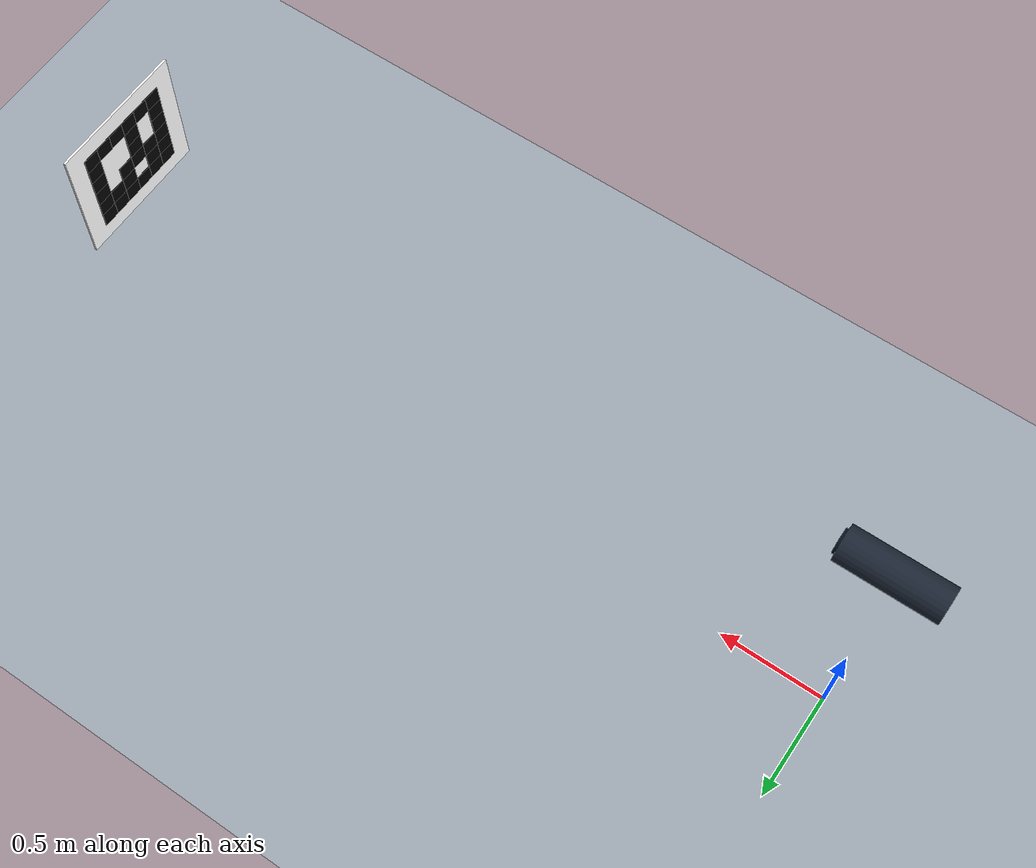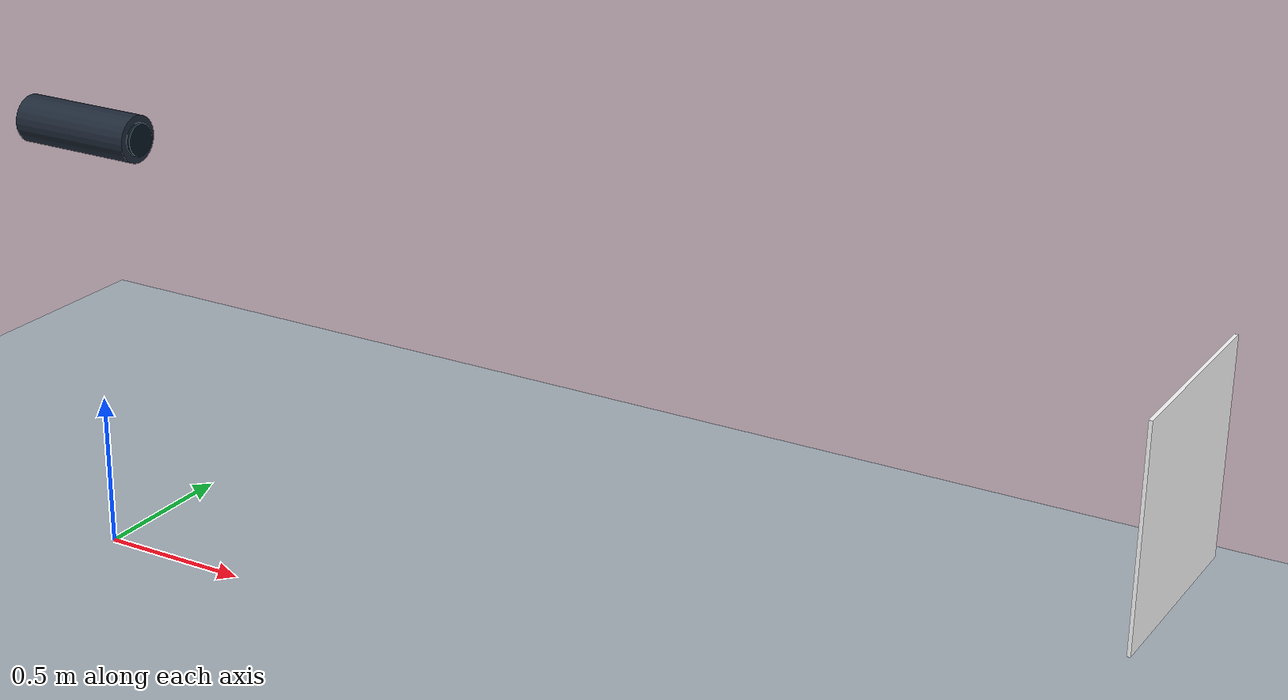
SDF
<?xml version="1.0"?>
<sdf version="1.10">
  <world name="camera_dancer_world">
    <physics name="physics" type="ignored">
      <max_step_size>0.001</max_step_size>
      <real_time_factor>1.0</real_time_factor>
    </physics>
    <gravity>0 0 -9.81</gravity>
    <plugin filename="gz-sim-physics-system" name="gz::sim::systems::Physics"/>
    <plugin filename="gz-sim-sensors-system" name="gz::sim::systems::Sensors">
      <render_engine>ogre2</render_engine>
    </plugin>
    <plugin filename="gz-sim-user-commands-system" name="gz::sim::systems::UserCommands"/>
    <plugin filename="gz-sim-scene-broadcaster-system" name="gz::sim::systems::SceneBroadcaster"/>

    <scene>
      <ambient>0.6 0.6 0.6 1</ambient>
      <background>0.78 0.85 0.93 1</background>
      <shadows>true</shadows>
    </scene>
    <gui fullscreen="false">
      <plugin filename="MinimalScene" name="3D View">
        <gz-gui>
          <title>3D View</title>
          <property type="bool" key="showTitleBar">false</property>
          <property type="string" key="state">docked</property>
        </gz-gui>
        <engine>ogre2</engine>
        <scene>scene</scene>
        <ambient_light>0.6 0.6 0.6</ambient_light>
        <background_color>0.78 0.85 0.93</background_color>
        <camera_pose>-5 -5 4 0 0.46 0.7854</camera_pose>
      </plugin>
      <plugin filename="SelectEntities" name="Выбор объектов">
        <gz-gui>
          <property type="string" key="state">floating</property>
          <property type="bool" key="showTitleBar">false</property>
          <property type="double" key="width">5</property>
          <property type="double" key="height">5</property>
        </gz-gui>
      </plugin>
      <plugin filename="GzSceneManager" name="Scene Manager">
        <gz-gui>
          <property type="string" key="state">floating</property>
          <property type="bool" key="showTitleBar">false</property>
          <property type="double" key="width">5</property>
          <property type="double" key="height">5</property>
        </gz-gui>
      </plugin>
      <plugin filename="InteractiveViewControl" name="View Control">
        <gz-gui>
          <property type="string" key="state">floating</property>
          <property type="bool" key="showTitleBar">false</property>
          <property type="double" key="width">5</property>
          <property type="double" key="height">5</property>
        </gz-gui>
      </plugin>
      <plugin filename="LiveTransformControl" name="Перемещение объекта">
        <gz-gui>
          <title>Переместить / повернуть объект</title>
          <anchors target="3D View">
            <line own="left" target="left"/>
            <line own="top" target="top"/>
          </anchors>
          <property type="string" key="state">floating</property>
          <property type="bool" key="showTitleBar">false</property>
          <property type="double" key="width">230</property>
          <property type="double" key="height">50</property>
        </gz-gui>
      </plugin>
      <plugin filename="WorldControl" name="World Control">
        <gz-gui>
          <title>World Control</title>
          <property type="bool" key="showTitleBar">false</property>
          <property type="bool" key="resizable">false</property>
          <property type="double" key="height">72</property>
          <property type="double" key="z">1</property>
          <property type="string" key="state">floating</property>
          <anchors target="3D View">
            <line own="left" target="left"/>
            <line own="bottom" target="bottom"/>
          </anchors>
        </gz-gui>
        <play_pause>true</play_pause>
        <step>true</step>
        <start_paused>false</start_paused>
        <use_event>true</use_event>
      </plugin>
      <plugin filename="WorldStats" name="World Stats">
        <gz-gui>
          <title>World Stats</title>
          <property type="bool" key="showTitleBar">false</property>
          <property type="bool" key="resizable">false</property>
          <property type="double" key="height">100</property>
          <property type="double" key="width">250</property>
          <property type="double" key="z">1</property>
          <property type="string" key="state">floating</property>
          <anchors target="3D View">
            <line own="right" target="right"/>
            <line own="bottom" target="bottom"/>
          </anchors>
        </gz-gui>
        <sim_time>true</sim_time>
        <real_time_factor>true</real_time_factor>
      </plugin>
      <plugin filename="ImageDisplay" name="ArUco: изображение и ID">
        <gz-gui>
          <title>Камера — ArUco ID 23</title>
          <property type="string" key="state">floating</property>
          <property type="bool" key="showTitleBar">true</property>
          <property type="double" key="width">640</property>
          <property type="double" key="height">500</property>
          <property type="double" key="x">540</property>
          <property type="double" key="y">60</property>
        </gz-gui>
        <topic>/aruco_camera/annotated</topic>
        <topic_picker>false</topic_picker>
      </plugin>
    </gui>

    <light name="sun" type="directional">
      <pose>0 0 10 0 0 0</pose>
      <cast_shadows>true</cast_shadows>
      <diffuse>0.9 0.9 0.9 1</diffuse>
      <specular>0.2 0.2 0.2 1</specular>
      <attenuation><range>1000</range><constant>0.9</constant><linear>0.01</linear><quadratic>0.001</quadratic></attenuation>
      <direction>-0.5 0.1 -0.9</direction>
    </light>
    <model name="ground">
      <static>true</static>
      <link name="ground_link">
        <collision name="ground_collision">
          <geometry><plane><normal>0 0 1</normal><size>2000 2000</size></plane></geometry>
          <surface><friction><ode><mu>0</mu><mu2>0</mu2></ode></friction></surface>
        </collision>
        <visual name="ground_visual">
          <geometry><plane><normal>0 0 1</normal><size>2000 2000</size></plane></geometry>
          <material><ambient>0.65 0.69 0.73 1</ambient><diffuse>0.65 0.69 0.73 1</diffuse></material>
        </visual>
      </link>
    </model>

    <model name="static_camera">
      <!-- Camera body is horizontal and its lens faces +X. -->
      <static>true</static>
      <pose>0 0 1.4 0 0 0</pose>
      <link name="camera_body">
        <visual name="cylinder_body">
          <pose>0 0 0 0 1.5708 0</pose>
          <geometry><cylinder><radius>0.075</radius><length>0.42</length></cylinder></geometry>
          <material><ambient>0.12 0.16 0.22 1</ambient><diffuse>0.12 0.16 0.22 1</diffuse><specular>0.3 0.3 0.3 1</specular></material>
        </visual>
        <visual name="camera_lens">
          <pose>0.216 0 0 0 1.5708 0</pose>
          <geometry><cylinder><radius>0.052</radius><length>0.012</length></cylinder></geometry>
          <material><ambient>0.02 0.08 0.12 1</ambient><diffuse>0.02 0.08 0.12 1</diffuse></material>
        </visual>
        <sensor name="front_camera" type="camera">
          <pose>0.23 0 0 0 0.1 0</pose>
          <topic>/front_camera/image</topic>
          <camera>
            <horizontal_fov>1.047</horizontal_fov>
            <image><width>640</width><height>480</height><format>R8G8B8</format></image>
            <clip><near>0.03</near><far>100</far></clip>
          </camera>
          <always_on>true</always_on>
          <update_rate>30</update_rate>
          <visualize>true</visualize>
        </sensor>
      </link>
    </model>

    <include>
      <uri>model://aruco_marker</uri>
      <name>aruco_marker_id_23</name>
      <!-- Vertical board, facing the camera along -X, at optical-center height. -->
      <pose>3.5 0 1.05 0 -1.5708 0</pose>
    </include>
  </world>
</sdf>

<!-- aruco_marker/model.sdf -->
<sdf version="1.9">
  <model name="aruco_marker">
    <static>true</static>
    <link name="board">
      <collision name="board_collision">
        <geometry><box><size>0.620 0.620 0.01</size></box></geometry>
      </collision>
      <visual name="white_board">
        <geometry><box><size>0.620 0.620 0.01</size></box></geometry>
        <material>
          <ambient>1 1 1 1</ambient>
          <diffuse>1 1 1 1</diffuse>
          <specular>0 0 0 1</specular>
        </material>
      </visual>
      <visual name="cell_00">
        <pose>0.187500 0.187500 0.007 0 0 0</pose>
        <geometry><box><size>0.075000 0.075000 0.004</size></box></geometry>
        <material>
          <ambient>0.005 0.005 0.005 1</ambient>
          <diffuse>0.005 0.005 0.005 1</diffuse>
          <specular>0 0 0 1</specular>
        </material>
      </visual>
      <visual name="cell_01">
        <pose>0.187500 0.112500 0.007 0 0 0</pose>
        <geometry><box><size>0.075000 0.075000 0.004</size></box></geometry>
        <material>
          <ambient>0.005 0.005 0.005 1</ambient>
          <diffuse>0.005 0.005 0.005 1</diffuse>
          <specular>0 0 0 1</specular>
        </material>
      </visual>
      <visual name="cell_02">
        <pose>0.187500 0.037500 0.007 0 0 0</pose>
        <geometry><box><size>0.075000 0.075000 0.004</size></box></geometry>
        <material>
          <ambient>0.005 0.005 0.005 1</ambient>
          <diffuse>0.005 0.005 0.005 1</diffuse>
          <specular>0 0 0 1</specular>
        </material>
      </visual>
      <visual name="cell_03">
        <pose>0.187500 -0.037500 0.007 0 0 0</pose>
        <geometry><box><size>0.075000 0.075000 0.004</size></box></geometry>
        <material>
          <ambient>0.005 0.005 0.005 1</ambient>
          <diffuse>0.005 0.005 0.005 1</diffuse>
          <specular>0 0 0 1</specular>
        </material>
      </visual>
      <visual name="cell_04">
        <pose>0.187500 -0.112500 0.007 0 0 0</pose>
        <geometry><box><size>0.075000 0.075000 0.004</size></box></geometry>
        <material>
          <ambient>0.005 0.005 0.005 1</ambient>
          <diffuse>0.005 0.005 0.005 1</diffuse>
          <specular>0 0 0 1</specular>
        </material>
      </visual>
      <visual name="cell_05">
        <pose>0.187500 -0.187500 0.007 0 0 0</pose>
        <geometry><box><size>0.075000 0.075000 0.004</size></box></geometry>
        <material>
          <ambient>0.005 0.005 0.005 1</ambient>
          <diffuse>0.005 0.005 0.005 1</diffuse>
          <specular>0 0 0 1</specular>
        </material>
      </visual>
      <visual name="cell_06">
        <pose>0.112500 0.187500 0.007 0 0 0</pose>
        <geometry><box><size>0.075000 0.075000 0.004</size></box></geometry>
        <material>
          <ambient>0.005 0.005 0.005 1</ambient>
          <diffuse>0.005 0.005 0.005 1</diffuse>
          <specular>0 0 0 1</specular>
        </material>
      </visual>
      <visual name="cell_07">
        <pose>0.112500 -0.037500 0.007 0 0 0</pose>
        <geometry><box><size>0.075000 0.075000 0.004</size></box></geometry>
        <material>
          <ambient>0.005 0.005 0.005 1</ambient>
          <diffuse>0.005 0.005 0.005 1</diffuse>
          <specular>0 0 0 1</specular>
        </material>
      </visual>
      <visual name="cell_08">
        <pose>0.112500 -0.187500 0.007 0 0 0</pose>
        <geometry><box><size>0.075000 0.075000 0.004</size></box></geometry>
        <material>
          <ambient>0.005 0.005 0.005 1</ambient>
          <diffuse>0.005 0.005 0.005 1</diffuse>
          <specular>0 0 0 1</specular>
        </material>
      </visual>
      <visual name="cell_09">
        <pose>0.037500 0.187500 0.007 0 0 0</pose>
        <geometry><box><size>0.075000 0.075000 0.004</size></box></geometry>
        <material>
          <ambient>0.005 0.005 0.005 1</ambient>
          <diffuse>0.005 0.005 0.005 1</diffuse>
          <specular>0 0 0 1</specular>
        </material>
      </visual>
      <visual name="cell_10">
        <pose>0.037500 -0.037500 0.007 0 0 0</pose>
        <geometry><box><size>0.075000 0.075000 0.004</size></box></geometry>
        <material>
          <ambient>0.005 0.005 0.005 1</ambient>
          <diffuse>0.005 0.005 0.005 1</diffuse>
          <specular>0 0 0 1</specular>
        </material>
      </visual>
      <visual name="cell_11">
        <pose>0.037500 -0.187500 0.007 0 0 0</pose>
        <geometry><box><size>0.075000 0.075000 0.004</size></box></geometry>
        <material>
          <ambient>0.005 0.005 0.005 1</ambient>
          <diffuse>0.005 0.005 0.005 1</diffuse>
          <specular>0 0 0 1</specular>
        </material>
      </visual>
      <visual name="cell_12">
        <pose>-0.037500 0.187500 0.007 0 0 0</pose>
        <geometry><box><size>0.075000 0.075000 0.004</size></box></geometry>
        <material>
          <ambient>0.005 0.005 0.005 1</ambient>
          <diffuse>0.005 0.005 0.005 1</diffuse>
          <specular>0 0 0 1</specular>
        </material>
      </visual>
      <visual name="cell_13">
        <pose>-0.037500 0.037500 0.007 0 0 0</pose>
        <geometry><box><size>0.075000 0.075000 0.004</size></box></geometry>
        <material>
          <ambient>0.005 0.005 0.005 1</ambient>
          <diffuse>0.005 0.005 0.005 1</diffuse>
          <specular>0 0 0 1</specular>
        </material>
      </visual>
      <visual name="cell_14">
        <pose>-0.037500 -0.037500 0.007 0 0 0</pose>
        <geometry><box><size>0.075000 0.075000 0.004</size></box></geometry>
        <material>
          <ambient>0.005 0.005 0.005 1</ambient>
          <diffuse>0.005 0.005 0.005 1</diffuse>
          <specular>0 0 0 1</specular>
        </material>
      </visual>
      <visual name="cell_15">
        <pose>-0.037500 -0.112500 0.007 0 0 0</pose>
        <geometry><box><size>0.075000 0.075000 0.004</size></box></geometry>
        <material>
          <ambient>0.005 0.005 0.005 1</ambient>
          <diffuse>0.005 0.005 0.005 1</diffuse>
          <specular>0 0 0 1</specular>
        </material>
      </visual>
      <visual name="cell_16">
        <pose>-0.037500 -0.187500 0.007 0 0 0</pose>
        <geometry><box><size>0.075000 0.075000 0.004</size></box></geometry>
        <material>
          <ambient>0.005 0.005 0.005 1</ambient>
          <diffuse>0.005 0.005 0.005 1</diffuse>
          <specular>0 0 0 1</specular>
        </material>
      </visual>
      <visual name="cell_17">
        <pose>-0.112500 0.187500 0.007 0 0 0</pose>
        <geometry><box><size>0.075000 0.075000 0.004</size></box></geometry>
        <material>
          <ambient>0.005 0.005 0.005 1</ambient>
          <diffuse>0.005 0.005 0.005 1</diffuse>
          <specular>0 0 0 1</specular>
        </material>
      </visual>
      <visual name="cell_18">
        <pose>-0.112500 0.112500 0.007 0 0 0</pose>
        <geometry><box><size>0.075000 0.075000 0.004</size></box></geometry>
        <material>
          <ambient>0.005 0.005 0.005 1</ambient>
          <diffuse>0.005 0.005 0.005 1</diffuse>
          <specular>0 0 0 1</specular>
        </material>
      </visual>
      <visual name="cell_19">
        <pose>-0.112500 0.037500 0.007 0 0 0</pose>
        <geometry><box><size>0.075000 0.075000 0.004</size></box></geometry>
        <material>
          <ambient>0.005 0.005 0.005 1</ambient>
          <diffuse>0.005 0.005 0.005 1</diffuse>
          <specular>0 0 0 1</specular>
        </material>
      </visual>
      <visual name="cell_20">
        <pose>-0.112500 -0.112500 0.007 0 0 0</pose>
        <geometry><box><size>0.075000 0.075000 0.004</size></box></geometry>
        <material>
          <ambient>0.005 0.005 0.005 1</ambient>
          <diffuse>0.005 0.005 0.005 1</diffuse>
          <specular>0 0 0 1</specular>
        </material>
      </visual>
      <visual name="cell_21">
        <pose>-0.112500 -0.187500 0.007 0 0 0</pose>
        <geometry><box><size>0.075000 0.075000 0.004</size></box></geometry>
        <material>
          <ambient>0.005 0.005 0.005 1</ambient>
          <diffuse>0.005 0.005 0.005 1</diffuse>
          <specular>0 0 0 1</specular>
        </material>
      </visual>
      <visual name="cell_22">
        <pose>-0.187500 0.187500 0.007 0 0 0</pose>
        <geometry><box><size>0.075000 0.075000 0.004</size></box></geometry>
        <material>
          <ambient>0.005 0.005 0.005 1</ambient>
          <diffuse>0.005 0.005 0.005 1</diffuse>
          <specular>0 0 0 1</specular>
        </material>
      </visual>
      <visual name="cell_23">
        <pose>-0.187500 0.112500 0.007 0 0 0</pose>
        <geometry><box><size>0.075000 0.075000 0.004</size></box></geometry>
        <material>
          <ambient>0.005 0.005 0.005 1</ambient>
          <diffuse>0.005 0.005 0.005 1</diffuse>
          <specular>0 0 0 1</specular>
        </material>
      </visual>
      <visual name="cell_24">
        <pose>-0.187500 0.037500 0.007 0 0 0</pose>
        <geometry><box><size>0.075000 0.075000 0.004</size></box></geometry>
        <material>
          <ambient>0.005 0.005 0.005 1</ambient>
          <diffuse>0.005 0.005 0.005 1</diffuse>
          <specular>0 0 0 1</specular>
        </material>
      </visual>
      <visual name="cell_25">
        <pose>-0.187500 -0.037500 0.007 0 0 0</pose>
        <geometry><box><size>0.075000 0.075000 0.004</size></box></geometry>
        <material>
          <ambient>0.005 0.005 0.005 1</ambient>
          <diffuse>0.005 0.005 0.005 1</diffuse>
          <specular>0 0 0 1</specular>
        </material>
      </visual>
      <visual name="cell_26">
        <pose>-0.187500 -0.112500 0.007 0 0 0</pose>
        <geometry><box><size>0.075000 0.075000 0.004</size></box></geometry>
        <material>
          <ambient>0.005 0.005 0.005 1</ambient>
          <diffuse>0.005 0.005 0.005 1</diffuse>
          <specular>0 0 0 1</specular>
        </material>
      </visual>
      <visual name="cell_27">
        <pose>-0.187500 -0.187500 0.007 0 0 0</pose>
        <geometry><box><size>0.075000 0.075000 0.004</size></box></geometry>
        <material>
          <ambient>0.005 0.005 0.005 1</ambient>
          <diffuse>0.005 0.005 0.005 1</diffuse>
          <specular>0 0 0 1</specular>
        </material>
      </visual>
    </link>
  </model>
</sdf>
